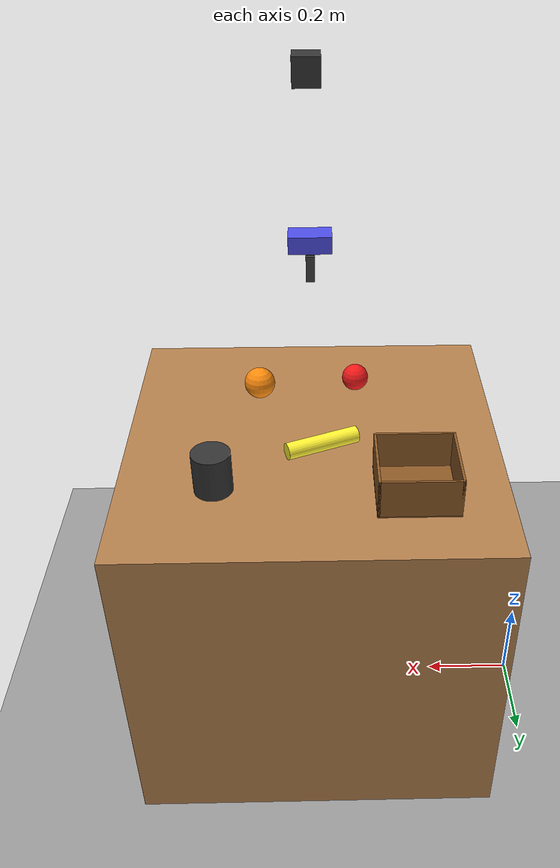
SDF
<?xml version="1.0"?>
<!--
  Tabletop scene for the Gemini Robotics-ER demo:
  apple, orange, banana, mug, basket sitting on a wooden table, lit overhead,
  with a downward-facing camera and a floating parallel-jaw gripper.
-->
<sdf version="1.10">
  <world name="tabletop">
    <gravity>0 0 -9.81</gravity>

    <plugin filename="gz-sim-physics-system" name="gz::sim::systems::Physics"/>
    <plugin filename="gz-sim-user-commands-system" name="gz::sim::systems::UserCommands"/>
    <plugin filename="gz-sim-scene-broadcaster-system" name="gz::sim::systems::SceneBroadcaster"/>
    <plugin filename="gz-sim-sensors-system" name="gz::sim::systems::Sensors">
      <render_engine>ogre2</render_engine>
    </plugin>

    <light type="directional" name="sun">
      <cast_shadows>true</cast_shadows>
      <pose>0 0 10 0 0 0</pose>
      <diffuse>0.9 0.9 0.9 1</diffuse>
      <specular>0.2 0.2 0.2 1</specular>
      <direction>-0.4 0.2 -0.9</direction>
    </light>

    <model name="ground_plane">
      <static>true</static>
      <link name="link">
        <collision name="collision">
          <geometry><plane><normal>0 0 1</normal><size>10 10</size></plane></geometry>
        </collision>
        <visual name="visual">
          <geometry><plane><normal>0 0 1</normal><size>10 10</size></plane></geometry>
          <material>
            <ambient>0.5 0.5 0.5 1</ambient>
            <diffuse>0.6 0.6 0.6 1</diffuse>
          </material>
        </visual>
      </link>
    </model>

    <model name="table">
      <static>true</static>
      <pose>0.5 0 0.375 0 0 0</pose>
      <link name="link">
        <collision name="collision">
          <geometry><box><size>0.8 0.8 0.75</size></box></geometry>
        </collision>
        <visual name="visual">
          <geometry><box><size>0.8 0.8 0.75</size></box></geometry>
          <material>
            <ambient>0.5 0.32 0.18 1</ambient>
            <diffuse>0.7 0.5 0.3 1</diffuse>
          </material>
        </visual>
      </link>
    </model>

    <model name="apple">
      <pose>0.4 -0.2 0.78 0 0 0</pose>
      <link name="link">
        <inertial><mass>0.10</mass>
          <inertia><ixx>1e-4</ixx><iyy>1e-4</iyy><izz>1e-4</izz>
                   <ixy>0</ixy><ixz>0</ixz><iyz>0</iyz></inertia>
        </inertial>
        <collision name="c"><geometry><sphere><radius>0.030</radius></sphere></geometry></collision>
        <visual name="v"><geometry><sphere><radius>0.030</radius></sphere></geometry>
          <material><ambient>0.7 0.05 0.05 1</ambient><diffuse>0.95 0.10 0.10 1</diffuse></material>
        </visual>
      </link>
    </model>

    <model name="orange">
      <pose>0.62 -0.18 0.78 0 0 0</pose>
      <link name="link">
        <inertial><mass>0.12</mass>
          <inertia><ixx>1e-4</ixx><iyy>1e-4</iyy><izz>1e-4</izz>
                   <ixy>0</ixy><ixz>0</ixz><iyz>0</iyz></inertia>
        </inertial>
        <collision name="c"><geometry><sphere><radius>0.035</radius></sphere></geometry></collision>
        <visual name="v"><geometry><sphere><radius>0.035</radius></sphere></geometry>
          <material><ambient>0.75 0.40 0.05 1</ambient><diffuse>1.00 0.55 0.05 1</diffuse></material>
        </visual>
      </link>
    </model>

    <model name="banana">
      <pose>0.48 0.05 0.77 0 1.5708 0.4</pose>
      <link name="link">
        <inertial><mass>0.12</mass>
          <inertia><ixx>1e-4</ixx><iyy>1e-4</iyy><izz>1e-4</izz>
                   <ixy>0</ixy><ixz>0</ixz><iyz>0</iyz></inertia>
        </inertial>
        <collision name="c"><geometry><cylinder><radius>0.018</radius><length>0.16</length></cylinder></geometry></collision>
        <visual name="v"><geometry><cylinder><radius>0.018</radius><length>0.16</length></cylinder></geometry>
          <material><ambient>0.85 0.80 0.10 1</ambient><diffuse>1.00 0.95 0.20 1</diffuse></material>
        </visual>
      </link>
    </model>

    <model name="mug">
      <pose>0.70 0.18 0.795 0 0 0</pose>
      <link name="link">
        <inertial><mass>0.20</mass>
          <inertia><ixx>2e-4</ixx><iyy>2e-4</iyy><izz>2e-4</izz>
                   <ixy>0</ixy><ixz>0</ixz><iyz>0</iyz></inertia>
        </inertial>
        <collision name="c"><geometry><cylinder><radius>0.040</radius><length>0.090</length></cylinder></geometry></collision>
        <visual name="v"><geometry><cylinder><radius>0.040</radius><length>0.090</length></cylinder></geometry>
          <material><ambient>0.10 0.10 0.10 1</ambient><diffuse>0.20 0.20 0.20 1</diffuse></material>
        </visual>
      </link>
    </model>

    <model name="basket">
      <static>true</static>
      <pose>0.30 0.25 0.795 0 0 0</pose>
      <link name="bottom">
        <pose>0 0 0 0 0 0</pose>
        <collision name="c"><geometry><box><size>0.16 0.16 0.005</size></box></geometry></collision>
        <visual name="v"><geometry><box><size>0.16 0.16 0.005</size></box></geometry>
          <material><ambient>0.40 0.25 0.10 1</ambient><diffuse>0.55 0.35 0.15 1</diffuse></material>
        </visual>
      </link>
      <link name="wall_n"><pose>0 0.0775 0.04 0 0 0</pose>
        <collision name="c"><geometry><box><size>0.16 0.005 0.08</size></box></geometry></collision>
        <visual name="v"><geometry><box><size>0.16 0.005 0.08</size></box></geometry>
          <material><ambient>0.40 0.25 0.10 1</ambient><diffuse>0.55 0.35 0.15 1</diffuse></material>
        </visual>
      </link>
      <link name="wall_s"><pose>0 -0.0775 0.04 0 0 0</pose>
        <collision name="c"><geometry><box><size>0.16 0.005 0.08</size></box></geometry></collision>
        <visual name="v"><geometry><box><size>0.16 0.005 0.08</size></box></geometry>
          <material><ambient>0.40 0.25 0.10 1</ambient><diffuse>0.55 0.35 0.15 1</diffuse></material>
        </visual>
      </link>
      <link name="wall_e"><pose>0.0775 0 0.04 0 0 0</pose>
        <collision name="c"><geometry><box><size>0.005 0.16 0.08</size></box></geometry></collision>
        <visual name="v"><geometry><box><size>0.005 0.16 0.08</size></box></geometry>
          <material><ambient>0.40 0.25 0.10 1</ambient><diffuse>0.55 0.35 0.15 1</diffuse></material>
        </visual>
      </link>
      <link name="wall_w"><pose>-0.0775 0 0.04 0 0 0</pose>
        <collision name="c"><geometry><box><size>0.005 0.16 0.08</size></box></geometry></collision>
        <visual name="v"><geometry><box><size>0.005 0.16 0.08</size></box></geometry>
          <material><ambient>0.40 0.25 0.10 1</ambient><diffuse>0.55 0.35 0.15 1</diffuse></material>
        </visual>
      </link>
    </model>

    <!-- Overhead camera, 1.5 m above the table center, looking straight down.
         Pitch +pi/2 about Y rotates the default +X-forward camera to look along -Z. -->
    <model name="overhead_camera">
      <static>true</static>
      <pose>0.5 0 1.5 0 1.5708 0</pose>
      <link name="link">
        <visual name="v"><geometry><box><size>0.05 0.05 0.05</size></box></geometry>
          <material><ambient>0.1 0.1 0.1 1</ambient><diffuse>0.2 0.2 0.2 1</diffuse></material>
        </visual>
        <sensor name="camera" type="camera">
          <camera>
            <horizontal_fov>1.0472</horizontal_fov>
            <image><width>800</width><height>600</height><format>R8G8B8</format></image>
            <clip><near>0.1</near><far>10.0</far></clip>
          </camera>
          <always_on>true</always_on>
          <update_rate>15</update_rate>
          <visualize>false</visualize>
          <topic>camera</topic>
        </sensor>
      </link>
    </model>

    <include>
      <uri>model://parallel_jaw_gripper</uri>
      <pose>0.5 -0.35 1.05 0 0 0</pose>
    </include>
  </world>
</sdf>

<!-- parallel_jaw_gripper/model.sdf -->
<sdf version="1.10">
  <model name="parallel_jaw_gripper">
    <pose>0 0 0 0 0 0</pose>

    <link name="palm">
      <gravity>false</gravity>
      <inertial>
        <mass>0.5</mass>
        <inertia><ixx>1e-3</ixx><iyy>1e-3</iyy><izz>1e-3</izz>
                 <ixy>0</ixy><ixz>0</ixz><iyz>0</iyz></inertia>
      </inertial>
      <collision name="c">
        <geometry><box><size>0.10 0.06 0.04</size></box></geometry>
      </collision>
      <visual name="v">
        <geometry><box><size>0.10 0.06 0.04</size></box></geometry>
        <material><ambient>0.20 0.20 0.70 1</ambient><diffuse>0.30 0.30 0.90 1</diffuse></material>
      </visual>
    </link>

    <link name="left_finger">
      <gravity>false</gravity>
      <pose>0 0.040 -0.05 0 0 0</pose>
      <inertial>
        <mass>0.05</mass>
        <inertia><ixx>1e-5</ixx><iyy>1e-5</iyy><izz>1e-5</izz>
                 <ixy>0</ixy><ixz>0</ixz><iyz>0</iyz></inertia>
      </inertial>
      <collision name="c">
        <geometry><box><size>0.02 0.01 0.06</size></box></geometry>
      </collision>
      <visual name="v">
        <geometry><box><size>0.02 0.01 0.06</size></box></geometry>
        <material><ambient>0.10 0.10 0.10 1</ambient><diffuse>0.25 0.25 0.25 1</diffuse></material>
      </visual>
    </link>

    <link name="right_finger">
      <gravity>false</gravity>
      <pose>0 -0.040 -0.05 0 0 0</pose>
      <inertial>
        <mass>0.05</mass>
        <inertia><ixx>1e-5</ixx><iyy>1e-5</iyy><izz>1e-5</izz>
                 <ixy>0</ixy><ixz>0</ixz><iyz>0</iyz></inertia>
      </inertial>
      <collision name="c">
        <geometry><box><size>0.02 0.01 0.06</size></box></geometry>
      </collision>
      <visual name="v">
        <geometry><box><size>0.02 0.01 0.06</size></box></geometry>
        <material><ambient>0.10 0.10 0.10 1</ambient><diffuse>0.25 0.25 0.25 1</diffuse></material>
      </visual>
    </link>

    <joint name="left_finger_joint" type="prismatic">
      <parent>palm</parent>
      <child>left_finger</child>
      <axis>
        <xyz>0 1 0</xyz>
        <limit><lower>0.0</lower><upper>0.05</upper><effort>50</effort><velocity>0.5</velocity></limit>
        <dynamics><damping>5.0</damping></dynamics>
      </axis>
    </joint>

    <joint name="right_finger_joint" type="prismatic">
      <parent>palm</parent>
      <child>right_finger</child>
      <axis>
        <xyz>0 -1 0</xyz>
        <limit><lower>0.0</lower><upper>0.05</upper><effort>50</effort><velocity>0.5</velocity></limit>
        <dynamics><damping>5.0</damping></dynamics>
      </axis>
    </joint>

    <plugin filename="gz-sim-joint-position-controller-system"
            name="gz::sim::systems::JointPositionController">
      <joint_name>left_finger_joint</joint_name>
      <topic>/gripper/left_finger_cmd</topic>
      <p_gain>200</p_gain>
      <i_gain>0</i_gain>
      <d_gain>20</d_gain>
    </plugin>

    <plugin filename="gz-sim-joint-position-controller-system"
            name="gz::sim::systems::JointPositionController">
      <joint_name>right_finger_joint</joint_name>
      <topic>/gripper/right_finger_cmd</topic>
      <p_gain>200</p_gain>
      <i_gain>0</i_gain>
      <d_gain>20</d_gain>
    </plugin>
  </model>
</sdf>
